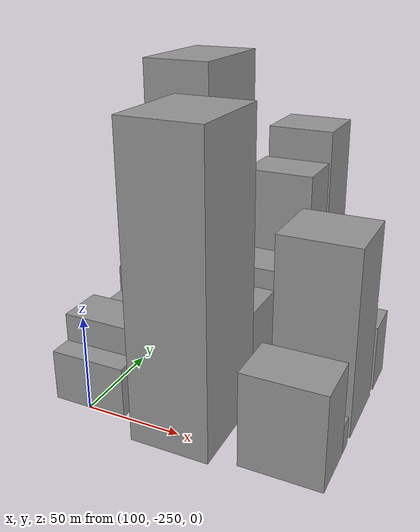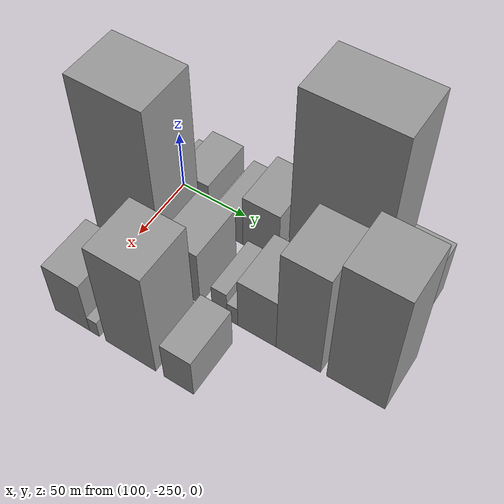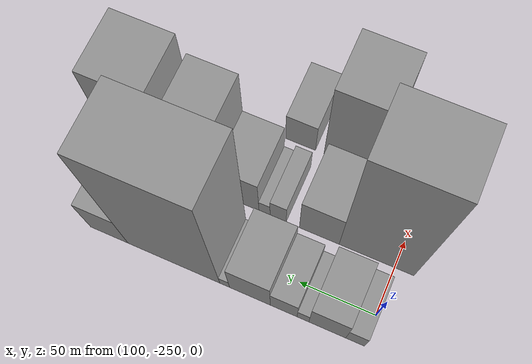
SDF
<sdf version="1.6">
 <world name="default">
  <model name="building_20">
   <static>1</static>
   <pose>100.0000 -244.2768 0 0.000000 0.000000 0.000000</pose>
   <link name="link">
    <pose>0 0 13.50 0 0 0</pose>
    <collision name="collision"><geometry><box><size>40.0000 12.1112 27.0000</size></box></geometry></collision>
    <visual name="visual">
     <cast_shadows>0</cast_shadows>
     <geometry><box><size>40.0000 12.1112 27.0000</size></box></geometry>
     <material>
      <script>
       <uri>model://grey_wall/materials/scripts</uri>
       <uri>model://grey_wall/materials/textures</uri>
       <name>vrc/grey_wall</name>
      </script>
     </material>
    </visual>
   </link>
  </model>
  <model name="building_21">
   <static>1</static>
   <pose>100.0000 -226.2192 0 0.000000 0.000000 0.000000</pose>
   <link name="link">
    <pose>0 0 21.00 0 0 0</pose>
    <collision name="collision"><geometry><box><size>40.0000 24.0040 42.0000</size></box></geometry></collision>
    <visual name="visual">
     <cast_shadows>0</cast_shadows>
     <geometry><box><size>40.0000 24.0040 42.0000</size></box></geometry>
     <material>
      <script>
       <uri>model://grey_wall/materials/scripts</uri>
       <uri>model://grey_wall/materials/textures</uri>
       <name>vrc/grey_wall</name>
      </script>
     </material>
    </visual>
   </link>
  </model>
  <model name="building_22">
   <static>1</static>
   <pose>100.0000 -210.3135 0 0.000000 0.000000 0.000000</pose>
   <link name="link">
    <pose>0 0 9.00 0 0 0</pose>
    <collision name="collision"><geometry><box><size>40.0000 7.8074 18.0000</size></box></geometry></collision>
    <visual name="visual">
     <cast_shadows>0</cast_shadows>
     <geometry><box><size>40.0000 7.8074 18.0000</size></box></geometry>
     <material>
      <script>
       <uri>model://grey_wall/materials/scripts</uri>
       <uri>model://grey_wall/materials/textures</uri>
       <name>vrc/grey_wall</name>
      </script>
     </material>
    </visual>
   </link>
  </model>
  <model name="building_23">
   <static>1</static>
   <pose>100.0000 -197.5785 0 0.000000 0.000000 0.000000</pose>
   <link name="link">
    <pose>0 0 16.50 0 0 0</pose>
    <collision name="collision"><geometry><box><size>40.0000 17.6627 33.0000</size></box></geometry></collision>
    <visual name="visual">
     <cast_shadows>0</cast_shadows>
     <geometry><box><size>40.0000 17.6627 33.0000</size></box></geometry>
     <material>
      <script>
       <uri>model://grey_wall/materials/scripts</uri>
       <uri>model://grey_wall/materials/textures</uri>
       <name>vrc/grey_wall</name>
      </script>
     </material>
    </visual>
   </link>
  </model>
  <model name="building_24">
   <static>1</static>
   <pose>100.0000 -175.1531 0 0.000000 0.000000 0.000000</pose>
   <link name="link">
    <pose>0 0 24.00 0 0 0</pose>
    <collision name="collision"><geometry><box><size>40.0000 27.1880 48.0000</size></box></geometry></collision>
    <visual name="visual">
     <cast_shadows>0</cast_shadows>
     <geometry><box><size>40.0000 27.1880 48.0000</size></box></geometry>
     <material>
      <script>
       <uri>model://grey_wall/materials/scripts</uri>
       <uri>model://grey_wall/materials/textures</uri>
       <name>vrc/grey_wall</name>
      </script>
     </material>
    </visual>
   </link>
  </model>
  <model name="building_25">
   <static>1</static>
   <pose>100.0000 -158.2635 0 0.000000 0.000000 0.000000</pose>
   <link name="link">
    <pose>0 0 7.50 0 0 0</pose>
    <collision name="collision"><geometry><box><size>40.0000 6.5912 15.0000</size></box></geometry></collision>
    <visual name="visual">
     <cast_shadows>0</cast_shadows>
     <geometry><box><size>40.0000 6.5912 15.0000</size></box></geometry>
     <material>
      <script>
       <uri>model://grey_wall/materials/scripts</uri>
       <uri>model://grey_wall/materials/textures</uri>
       <name>vrc/grey_wall</name>
      </script>
     </material>
    </visual>
   </link>
  </model>
  <model name="building_26">
   <static>1</static>
   <pose>100.0000 -123.3607 0 0.000000 0.000000 0.000000</pose>
   <link name="link">
    <pose>0 0 79.50 0 0 0</pose>
    <collision name="collision"><geometry><box><size>40.0000 63.2144 159.0000</size></box></geometry></collision>
    <visual name="visual">
     <cast_shadows>0</cast_shadows>
     <geometry><box><size>40.0000 63.2144 159.0000</size></box></geometry>
     <material>
      <script>
       <uri>model://grey_wall/materials/scripts</uri>
       <uri>model://grey_wall/materials/textures</uri>
       <name>vrc/grey_wall</name>
      </script>
     </material>
    </visual>
   </link>
  </model>
  <model name="building_27">
   <static>1</static>
   <pose>100.0000 -78.5831 0 0.000000 0.000000 0.000000</pose>
   <link name="link">
    <pose>0 0 24.00 0 0 0</pose>
    <collision name="collision"><geometry><box><size>40.0000 26.3408 48.0000</size></box></geometry></collision>
    <visual name="visual">
     <cast_shadows>0</cast_shadows>
     <geometry><box><size>40.0000 26.3408 48.0000</size></box></geometry>
     <material>
      <script>
       <uri>model://grey_wall/materials/scripts</uri>
       <uri>model://grey_wall/materials/textures</uri>
       <name>vrc/grey_wall</name>
      </script>
     </material>
    </visual>
   </link>
  </model>
  <model name="building_73">
   <static>1</static>
   <pose>152.0000 -237.7796 0 0.000000 0.000000 0.000000</pose>
   <link name="link">
    <pose>0 0 76.50 0 0 0</pose>
    <collision name="collision"><geometry><box><size>40.0000 49.8379 153.0000</size></box></geometry></collision>
    <visual name="visual">
     <cast_shadows>0</cast_shadows>
     <geometry><box><size>40.0000 49.8379 153.0000</size></box></geometry>
     <material>
      <script>
       <uri>model://grey_wall/materials/scripts</uri>
       <uri>model://grey_wall/materials/textures</uri>
       <name>vrc/grey_wall</name>
      </script>
     </material>
    </visual>
   </link>
  </model>
  <model name="building_74">
   <static>1</static>
   <pose>152.0000 -199.3614 0 0.000000 0.000000 0.000000</pose>
   <link name="link">
    <pose>0 0 25.50 0 0 0</pose>
    <collision name="collision"><geometry><box><size>40.0000 26.9984 51.0000</size></box></geometry></collision>
    <visual name="visual">
     <cast_shadows>0</cast_shadows>
     <geometry><box><size>40.0000 26.9984 51.0000</size></box></geometry>
     <material>
      <script>
       <uri>model://grey_wall/materials/scripts</uri>
       <uri>model://grey_wall/materials/textures</uri>
       <name>vrc/grey_wall</name>
      </script>
     </material>
    </visual>
   </link>
  </model>
  <model name="building_75">
   <static>1</static>
   <pose>152.0000 -171.3383 0 0.000000 0.000000 0.000000</pose>
   <link name="link">
    <pose>0 0 13.50 0 0 0</pose>
    <collision name="collision"><geometry><box><size>40.0000 11.0480 27.0000</size></box></geometry></collision>
    <visual name="visual">
     <cast_shadows>0</cast_shadows>
     <geometry><box><size>40.0000 11.0480 27.0000</size></box></geometry>
     <material>
      <script>
       <uri>model://grey_wall/materials/scripts</uri>
       <uri>model://grey_wall/materials/textures</uri>
       <name>vrc/grey_wall</name>
      </script>
     </material>
    </visual>
   </link>
  </model>
  <model name="building_76">
   <static>1</static>
   <pose>152.0000 -161.9786 0 0.000000 0.000000 0.000000</pose>
   <link name="link">
    <pose>0 0 9.00 0 0 0</pose>
    <collision name="collision"><geometry><box><size>40.0000 7.6713 18.0000</size></box></geometry></collision>
    <visual name="visual">
     <cast_shadows>0</cast_shadows>
     <geometry><box><size>40.0000 7.6713 18.0000</size></box></geometry>
     <material>
      <script>
       <uri>model://grey_wall/materials/scripts</uri>
       <uri>model://grey_wall/materials/textures</uri>
       <name>vrc/grey_wall</name>
      </script>
     </material>
    </visual>
   </link>
  </model>
  <model name="building_77">
   <static>1</static>
   <pose>152.0000 -144.4575 0 0.000000 0.000000 0.000000</pose>
   <link name="link">
    <pose>0 0 24.00 0 0 0</pose>
    <collision name="collision"><geometry><box><size>40.0000 27.3708 48.0000</size></box></geometry></collision>
    <visual name="visual">
     <cast_shadows>0</cast_shadows>
     <geometry><box><size>40.0000 27.3708 48.0000</size></box></geometry>
     <material>
      <script>
       <uri>model://grey_wall/materials/scripts</uri>
       <uri>model://grey_wall/materials/textures</uri>
       <name>vrc/grey_wall</name>
      </script>
     </material>
    </visual>
   </link>
  </model>
  <model name="building_78">
   <static>1</static>
   <pose>152.0000 -115.3826 0 0.000000 0.000000 0.000000</pose>
   <link name="link">
    <pose>0 0 48.00 0 0 0</pose>
    <collision name="collision"><geometry><box><size>40.0000 30.7791 96.0000</size></box></geometry></collision>
    <visual name="visual">
     <cast_shadows>0</cast_shadows>
     <geometry><box><size>40.0000 30.7791 96.0000</size></box></geometry>
     <material>
      <script>
       <uri>model://grey_wall/materials/scripts</uri>
       <uri>model://grey_wall/materials/textures</uri>
       <name>vrc/grey_wall</name>
      </script>
     </material>
    </visual>
   </link>
  </model>
  <model name="building_79">
   <static>1</static>
   <pose>152.0000 -76.7484 0 0.000000 0.000000 0.000000</pose>
   <link name="link">
    <pose>0 0 57.00 0 0 0</pose>
    <collision name="collision"><geometry><box><size>40.0000 38.4891 114.0000</size></box></geometry></collision>
    <visual name="visual">
     <cast_shadows>0</cast_shadows>
     <geometry><box><size>40.0000 38.4891 114.0000</size></box></geometry>
     <material>
      <script>
       <uri>model://grey_wall/materials/scripts</uri>
       <uri>model://grey_wall/materials/textures</uri>
       <name>vrc/grey_wall</name>
      </script>
     </material>
    </visual>
   </link>
  </model>
  <model name="building_126">
   <static>1</static>
   <pose>204.0000 -244.3895 0 0.000000 0.000000 0.000000</pose>
   <link name="link">
    <pose>0 0 24.00 0 0 0</pose>
    <collision name="collision"><geometry><box><size>40.0000 27.0763 48.0000</size></box></geometry></collision>
    <visual name="visual">
     <cast_shadows>0</cast_shadows>
     <geometry><box><size>40.0000 27.0763 48.0000</size></box></geometry>
     <material>
      <script>
       <uri>model://grey_wall/materials/scripts</uri>
       <uri>model://grey_wall/materials/textures</uri>
       <name>vrc/grey_wall</name>
      </script>
     </material>
    </visual>
   </link>
  </model>
  <model name="building_127">
   <static>1</static>
   <pose>204.0000 -227.1073 0 0.000000 0.000000 0.000000</pose>
   <link name="link">
    <pose>0 0 7.50 0 0 0</pose>
    <collision name="collision"><geometry><box><size>40.0000 7.4881 15.0000</size></box></geometry></collision>
    <visual name="visual">
     <cast_shadows>0</cast_shadows>
     <geometry><box><size>40.0000 7.4881 15.0000</size></box></geometry>
     <material>
      <script>
       <uri>model://grey_wall/materials/scripts</uri>
       <uri>model://grey_wall/materials/textures</uri>
       <name>vrc/grey_wall</name>
      </script>
     </material>
    </visual>
   </link>
  </model>
  <model name="building_128">
   <static>1</static>
   <pose>204.0000 -199.7542 0 0.000000 0.000000 0.000000</pose>
   <link name="link">
    <pose>0 0 48.00 0 0 0</pose>
    <collision name="collision"><geometry><box><size>40.0000 37.2181 96.0000</size></box></geometry></collision>
    <visual name="visual">
     <cast_shadows>0</cast_shadows>
     <geometry><box><size>40.0000 37.2181 96.0000</size></box></geometry>
     <material>
      <script>
       <uri>model://grey_wall/materials/scripts</uri>
       <uri>model://grey_wall/materials/textures</uri>
       <name>vrc/grey_wall</name>
      </script>
     </material>
    </visual>
   </link>
  </model>
  <model name="building_129">
   <static>1</static>
   <pose>204.0000 -164.5757 0 0.000000 0.000000 0.000000</pose>
   <link name="link">
    <pose>0 0 18.00 0 0 0</pose>
    <collision name="collision"><geometry><box><size>40.0000 21.1389 36.0000</size></box></geometry></collision>
    <visual name="visual">
     <cast_shadows>0</cast_shadows>
     <geometry><box><size>40.0000 21.1389 36.0000</size></box></geometry>
     <material>
      <script>
       <uri>model://grey_wall/materials/scripts</uri>
       <uri>model://grey_wall/materials/textures</uri>
       <name>vrc/grey_wall</name>
      </script>
     </material>
    </visual>
   </link>
  </model>
 </world>
</sdf>
